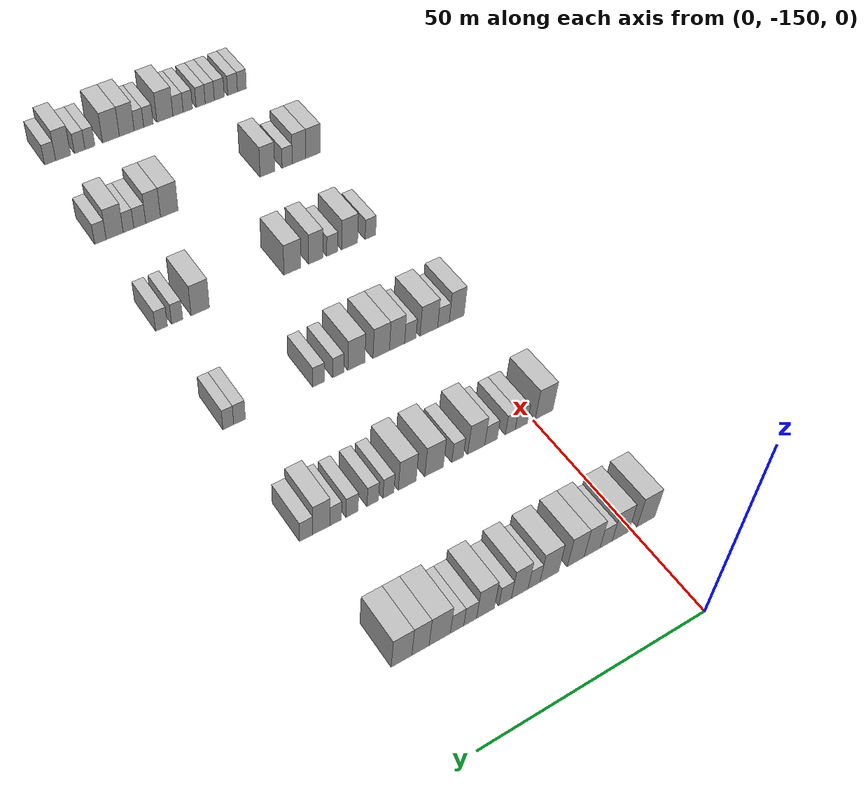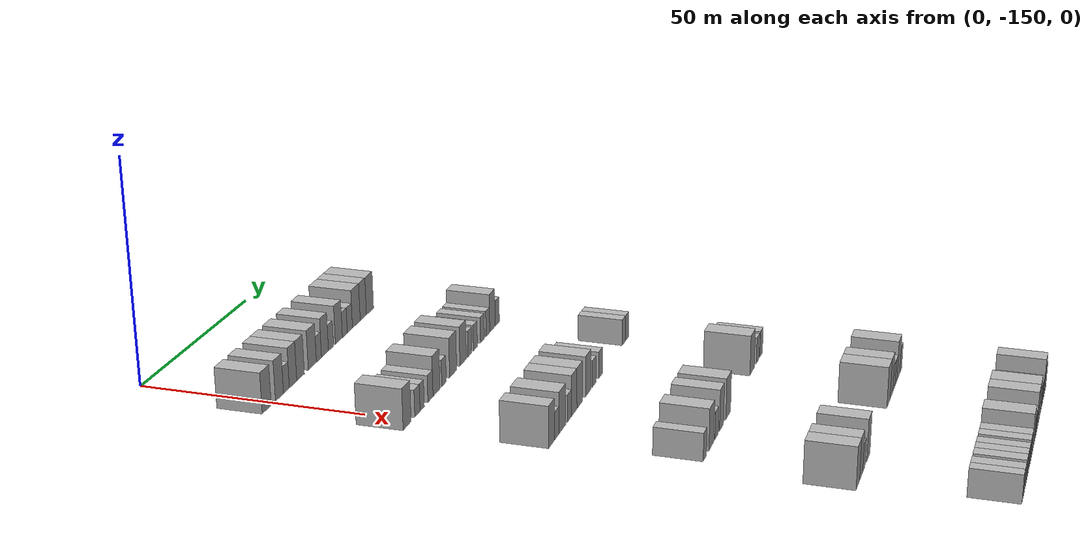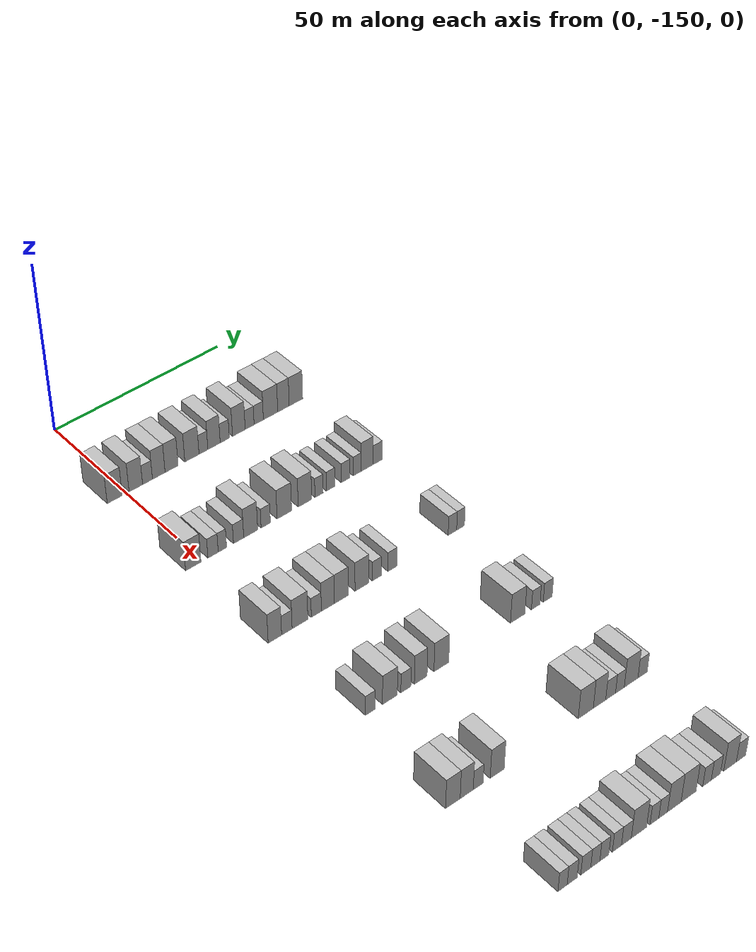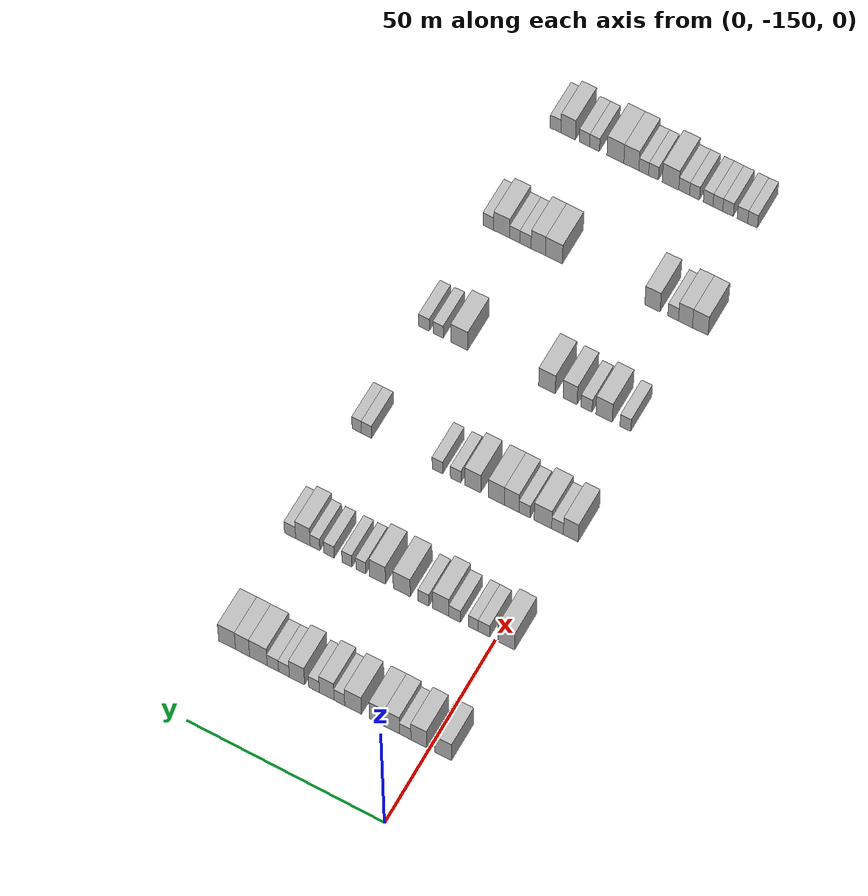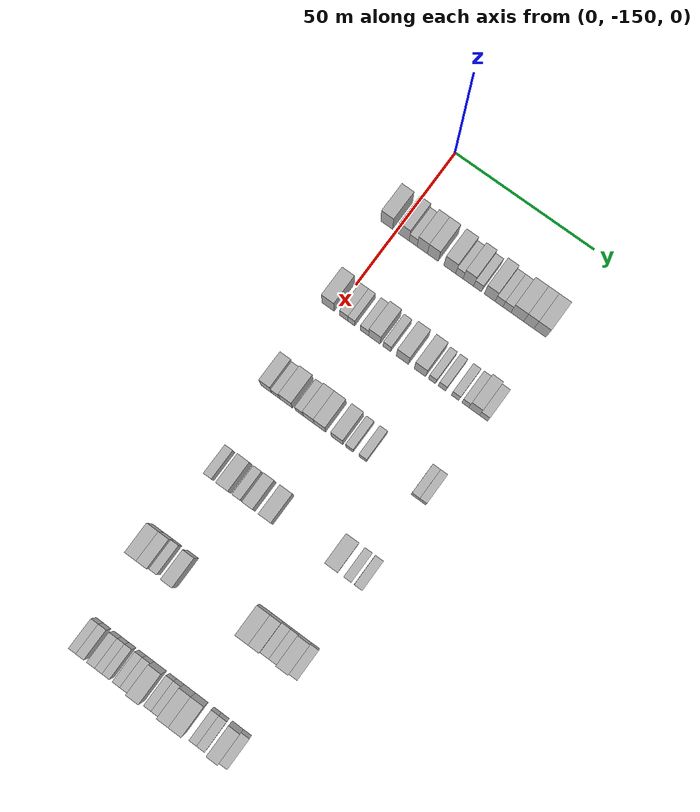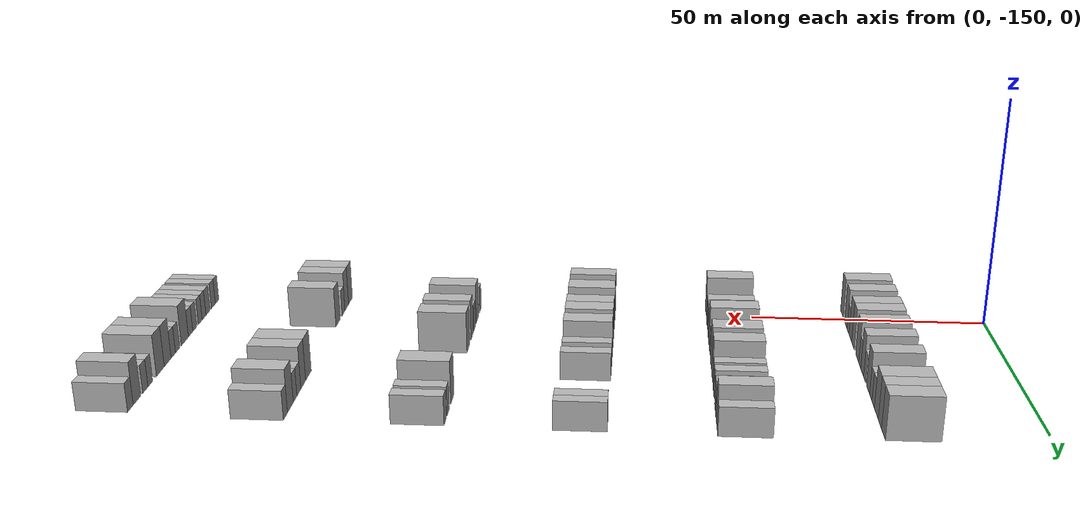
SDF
<sdf version="1.6">
 <world name="default">
  <model name="building_76">
   <static>1</static>
   <pose>25.0000 -153.3616 0 0.000000 0.000000 0.000000</pose>
   <link name="link">
    <pose>0 0 4.50 0 0 0</pose>
    <collision name="collision"><geometry><box><size>10.0000 4.3111 9.0000</size></box></geometry></collision>
    <visual name="visual">
     <cast_shadows>0</cast_shadows>
     <geometry><box><size>10.0000 4.3111 9.0000</size></box></geometry>
     <material>
      <script>
       <uri>model://HANNAS_wall/materials/scripts</uri>
       <uri>model://HANNAS_wall/materials/textures</uri>
       <name>vrc/HANNAS_wall</name>
      </script>
     </material>
    </visual>
   </link>
  </model>
  <model name="building_77">
   <static>1</static>
   <pose>25.0000 -147.2379 0 0.000000 0.000000 0.000000</pose>
   <link name="link">
    <pose>0 0 4.50 0 0 0</pose>
    <collision name="collision"><geometry><box><size>10.0000 3.9362 9.0000</size></box></geometry></collision>
    <visual name="visual">
     <cast_shadows>0</cast_shadows>
     <geometry><box><size>10.0000 3.9362 9.0000</size></box></geometry>
     <material>
      <script>
       <uri>model://HANNAS_wall/materials/scripts</uri>
       <uri>model://HANNAS_wall/materials/textures</uri>
       <name>vrc/HANNAS_wall</name>
      </script>
     </material>
    </visual>
   </link>
  </model>
  <model name="building_78">
   <static>1</static>
   <pose>25.0000 -143.8226 0 0.000000 0.000000 0.000000</pose>
   <link name="link">
    <pose>0 0 3.00 0 0 0</pose>
    <collision name="collision"><geometry><box><size>10.0000 2.8945 6.0000</size></box></geometry></collision>
    <visual name="visual">
     <cast_shadows>0</cast_shadows>
     <geometry><box><size>10.0000 2.8945 6.0000</size></box></geometry>
     <material>
      <script>
       <uri>model://HANNAS_wall/materials/scripts</uri>
       <uri>model://HANNAS_wall/materials/textures</uri>
       <name>vrc/HANNAS_wall</name>
      </script>
     </material>
    </visual>
   </link>
  </model>
  <model name="building_79">
   <static>1</static>
   <pose>25.0000 -140.5136 0 0.000000 0.000000 0.000000</pose>
   <link name="link">
    <pose>0 0 4.50 0 0 0</pose>
    <collision name="collision"><geometry><box><size>10.0000 3.7235 9.0000</size></box></geometry></collision>
    <visual name="visual">
     <cast_shadows>0</cast_shadows>
     <geometry><box><size>10.0000 3.7235 9.0000</size></box></geometry>
     <material>
      <script>
       <uri>model://HANNAS_wall/materials/scripts</uri>
       <uri>model://HANNAS_wall/materials/textures</uri>
       <name>vrc/HANNAS_wall</name>
      </script>
     </material>
    </visual>
   </link>
  </model>
  <model name="building_80">
   <static>1</static>
   <pose>25.0000 -136.7120 0 0.000000 0.000000 0.000000</pose>
   <link name="link">
    <pose>0 0 4.50 0 0 0</pose>
    <collision name="collision"><geometry><box><size>10.0000 3.8797 9.0000</size></box></geometry></collision>
    <visual name="visual">
     <cast_shadows>0</cast_shadows>
     <geometry><box><size>10.0000 3.8797 9.0000</size></box></geometry>
     <material>
      <script>
       <uri>model://HANNAS_wall/materials/scripts</uri>
       <uri>model://HANNAS_wall/materials/textures</uri>
       <name>vrc/HANNAS_wall</name>
      </script>
     </material>
    </visual>
   </link>
  </model>
  <model name="building_81">
   <static>1</static>
   <pose>25.0000 -130.6406 0 0.000000 0.000000 0.000000</pose>
   <link name="link">
    <pose>0 0 4.50 0 0 0</pose>
    <collision name="collision"><geometry><box><size>10.0000 4.2632 9.0000</size></box></geometry></collision>
    <visual name="visual">
     <cast_shadows>0</cast_shadows>
     <geometry><box><size>10.0000 4.2632 9.0000</size></box></geometry>
     <material>
      <script>
       <uri>model://HANNAS_wall/materials/scripts</uri>
       <uri>model://HANNAS_wall/materials/textures</uri>
       <name>vrc/HANNAS_wall</name>
      </script>
     </material>
    </visual>
   </link>
  </model>
  <model name="building_82">
   <static>1</static>
   <pose>25.0000 -127.1723 0 0.000000 0.000000 0.000000</pose>
   <link name="link">
    <pose>0 0 3.00 0 0 0</pose>
    <collision name="collision"><geometry><box><size>10.0000 2.6734 6.0000</size></box></geometry></collision>
    <visual name="visual">
     <cast_shadows>0</cast_shadows>
     <geometry><box><size>10.0000 2.6734 6.0000</size></box></geometry>
     <material>
      <script>
       <uri>model://HANNAS_wall/materials/scripts</uri>
       <uri>model://HANNAS_wall/materials/textures</uri>
       <name>vrc/HANNAS_wall</name>
      </script>
     </material>
    </visual>
   </link>
  </model>
  <model name="building_83">
   <static>1</static>
   <pose>25.0000 -123.9633 0 0.000000 0.000000 0.000000</pose>
   <link name="link">
    <pose>0 0 4.50 0 0 0</pose>
    <collision name="collision"><geometry><box><size>10.0000 3.7444 9.0000</size></box></geometry></collision>
    <visual name="visual">
     <cast_shadows>0</cast_shadows>
     <geometry><box><size>10.0000 3.7444 9.0000</size></box></geometry>
     <material>
      <script>
       <uri>model://HANNAS_wall/materials/scripts</uri>
       <uri>model://HANNAS_wall/materials/textures</uri>
       <name>vrc/HANNAS_wall</name>
      </script>
     </material>
    </visual>
   </link>
  </model>
  <model name="building_84">
   <static>1</static>
   <pose>25.0000 -120.7040 0 0.000000 0.000000 0.000000</pose>
   <link name="link">
    <pose>0 0 3.00 0 0 0</pose>
    <collision name="collision"><geometry><box><size>10.0000 2.7742 6.0000</size></box></geometry></collision>
    <visual name="visual">
     <cast_shadows>0</cast_shadows>
     <geometry><box><size>10.0000 2.7742 6.0000</size></box></geometry>
     <material>
      <script>
       <uri>model://HANNAS_wall/materials/scripts</uri>
       <uri>model://HANNAS_wall/materials/textures</uri>
       <name>vrc/HANNAS_wall</name>
      </script>
     </material>
    </visual>
   </link>
  </model>
  <model name="building_85">
   <static>1</static>
   <pose>25.0000 -116.3703 0 0.000000 0.000000 0.000000</pose>
   <link name="link">
    <pose>0 0 4.50 0 0 0</pose>
    <collision name="collision"><geometry><box><size>10.0000 3.8931 9.0000</size></box></geometry></collision>
    <visual name="visual">
     <cast_shadows>0</cast_shadows>
     <geometry><box><size>10.0000 3.8931 9.0000</size></box></geometry>
     <material>
      <script>
       <uri>model://HANNAS_wall/materials/scripts</uri>
       <uri>model://HANNAS_wall/materials/textures</uri>
       <name>vrc/HANNAS_wall</name>
      </script>
     </material>
    </visual>
   </link>
  </model>
  <model name="building_86">
   <static>1</static>
   <pose>25.0000 -113.0415 0 0.000000 0.000000 0.000000</pose>
   <link name="link">
    <pose>0 0 3.00 0 0 0</pose>
    <collision name="collision"><geometry><box><size>10.0000 2.7646 6.0000</size></box></geometry></collision>
    <visual name="visual">
     <cast_shadows>0</cast_shadows>
     <geometry><box><size>10.0000 2.7646 6.0000</size></box></geometry>
     <material>
      <script>
       <uri>model://HANNAS_wall/materials/scripts</uri>
       <uri>model://HANNAS_wall/materials/textures</uri>
       <name>vrc/HANNAS_wall</name>
      </script>
     </material>
    </visual>
   </link>
  </model>
  <model name="building_87">
   <static>1</static>
   <pose>25.0000 -110.2120 0 0.000000 0.000000 0.000000</pose>
   <link name="link">
    <pose>0 0 3.00 0 0 0</pose>
    <collision name="collision"><geometry><box><size>10.0000 2.8944 6.0000</size></box></geometry></collision>
    <visual name="visual">
     <cast_shadows>0</cast_shadows>
     <geometry><box><size>10.0000 2.8944 6.0000</size></box></geometry>
     <material>
      <script>
       <uri>model://HANNAS_wall/materials/scripts</uri>
       <uri>model://HANNAS_wall/materials/textures</uri>
       <name>vrc/HANNAS_wall</name>
      </script>
     </material>
    </visual>
   </link>
  </model>
  <model name="building_88">
   <static>1</static>
   <pose>25.0000 -106.5151 0 0.000000 0.000000 0.000000</pose>
   <link name="link">
    <pose>0 0 4.50 0 0 0</pose>
    <collision name="collision"><geometry><box><size>10.0000 4.4993 9.0000</size></box></geometry></collision>
    <visual name="visual">
     <cast_shadows>0</cast_shadows>
     <geometry><box><size>10.0000 4.4993 9.0000</size></box></geometry>
     <material>
      <script>
       <uri>model://HANNAS_wall/materials/scripts</uri>
       <uri>model://HANNAS_wall/materials/textures</uri>
       <name>vrc/HANNAS_wall</name>
      </script>
     </material>
    </visual>
   </link>
  </model>
  <model name="building_89">
   <static>1</static>
   <pose>25.0000 -102.4532 0 0.000000 0.000000 0.000000</pose>
   <link name="link">
    <pose>0 0 4.50 0 0 0</pose>
    <collision name="collision"><geometry><box><size>10.0000 3.6246 9.0000</size></box></geometry></collision>
    <visual name="visual">
     <cast_shadows>0</cast_shadows>
     <geometry><box><size>10.0000 3.6246 9.0000</size></box></geometry>
     <material>
      <script>
       <uri>model://HANNAS_wall/materials/scripts</uri>
       <uri>model://HANNAS_wall/materials/textures</uri>
       <name>vrc/HANNAS_wall</name>
      </script>
     </material>
    </visual>
   </link>
  </model>
  <model name="building_90">
   <static>1</static>
   <pose>25.0000 -98.4993 0 0.000000 0.000000 0.000000</pose>
   <link name="link">
    <pose>0 0 4.50 0 0 0</pose>
    <collision name="collision"><geometry><box><size>10.0000 4.2831 9.0000</size></box></geometry></collision>
    <visual name="visual">
     <cast_shadows>0</cast_shadows>
     <geometry><box><size>10.0000 4.2831 9.0000</size></box></geometry>
     <material>
      <script>
       <uri>model://HANNAS_wall/materials/scripts</uri>
       <uri>model://HANNAS_wall/materials/textures</uri>
       <name>vrc/HANNAS_wall</name>
      </script>
     </material>
    </visual>
   </link>
  </model>
  <model name="building_314">
   <static>1</static>
   <pose>55.0000 -152.6130 0 0.000000 0.000000 0.000000</pose>
   <link name="link">
    <pose>0 0 4.50 0 0 0</pose>
    <collision name="collision"><geometry><box><size>10.0000 4.3628 9.0000</size></box></geometry></collision>
    <visual name="visual">
     <cast_shadows>0</cast_shadows>
     <geometry><box><size>10.0000 4.3628 9.0000</size></box></geometry>
     <material>
      <script>
       <uri>model://HANNAS_wall/materials/scripts</uri>
       <uri>model://HANNAS_wall/materials/textures</uri>
       <name>vrc/HANNAS_wall</name>
      </script>
     </material>
    </visual>
   </link>
  </model>
  <model name="building_315">
   <static>1</static>
   <pose>55.0000 -146.9497 0 0.000000 0.000000 0.000000</pose>
   <link name="link">
    <pose>0 0 3.00 0 0 0</pose>
    <collision name="collision"><geometry><box><size>10.0000 2.9638 6.0000</size></box></geometry></collision>
    <visual name="visual">
     <cast_shadows>0</cast_shadows>
     <geometry><box><size>10.0000 2.9638 6.0000</size></box></geometry>
     <material>
      <script>
       <uri>model://HANNAS_wall/materials/scripts</uri>
       <uri>model://HANNAS_wall/materials/textures</uri>
       <name>vrc/HANNAS_wall</name>
      </script>
     </material>
    </visual>
   </link>
  </model>
  <model name="building_316">
   <static>1</static>
   <pose>55.0000 -144.2524 0 0.000000 0.000000 0.000000</pose>
   <link name="link">
    <pose>0 0 3.00 0 0 0</pose>
    <collision name="collision"><geometry><box><size>10.0000 2.4309 6.0000</size></box></geometry></collision>
    <visual name="visual">
     <cast_shadows>0</cast_shadows>
     <geometry><box><size>10.0000 2.4309 6.0000</size></box></geometry>
     <material>
      <script>
       <uri>model://HANNAS_wall/materials/scripts</uri>
       <uri>model://HANNAS_wall/materials/textures</uri>
       <name>vrc/HANNAS_wall</name>
      </script>
     </material>
    </visual>
   </link>
  </model>
  <model name="building_317">
   <static>1</static>
   <pose>55.0000 -139.5408 0 0.000000 0.000000 0.000000</pose>
   <link name="link">
    <pose>0 0 3.00 0 0 0</pose>
    <collision name="collision"><geometry><box><size>10.0000 2.9922 6.0000</size></box></geometry></collision>
    <visual name="visual">
     <cast_shadows>0</cast_shadows>
     <geometry><box><size>10.0000 2.9922 6.0000</size></box></geometry>
     <material>
      <script>
       <uri>model://HANNAS_wall/materials/scripts</uri>
       <uri>model://HANNAS_wall/materials/textures</uri>
       <name>vrc/HANNAS_wall</name>
      </script>
     </material>
    </visual>
   </link>
  </model>
  <model name="building_318">
   <static>1</static>
   <pose>55.0000 -135.9929 0 0.000000 0.000000 0.000000</pose>
   <link name="link">
    <pose>0 0 4.50 0 0 0</pose>
    <collision name="collision"><geometry><box><size>10.0000 4.1037 9.0000</size></box></geometry></collision>
    <visual name="visual">
     <cast_shadows>0</cast_shadows>
     <geometry><box><size>10.0000 4.1037 9.0000</size></box></geometry>
     <material>
      <script>
       <uri>model://HANNAS_wall/materials/scripts</uri>
       <uri>model://HANNAS_wall/materials/textures</uri>
       <name>vrc/HANNAS_wall</name>
      </script>
     </material>
    </visual>
   </link>
  </model>
  <model name="building_319">
   <static>1</static>
   <pose>55.0000 -131.5647 0 0.000000 0.000000 0.000000</pose>
   <link name="link">
    <pose>0 0 3.00 0 0 0</pose>
    <collision name="collision"><geometry><box><size>10.0000 2.7526 6.0000</size></box></geometry></collision>
    <visual name="visual">
     <cast_shadows>0</cast_shadows>
     <geometry><box><size>10.0000 2.7526 6.0000</size></box></geometry>
     <material>
      <script>
       <uri>model://HANNAS_wall/materials/scripts</uri>
       <uri>model://HANNAS_wall/materials/textures</uri>
       <name>vrc/HANNAS_wall</name>
      </script>
     </material>
    </visual>
   </link>
  </model>
  <model name="building_320">
   <static>1</static>
   <pose>55.0000 -126.0169 0 0.000000 0.000000 0.000000</pose>
   <link name="link">
    <pose>0 0 4.50 0 0 0</pose>
    <collision name="collision"><geometry><box><size>10.0000 4.3429 9.0000</size></box></geometry></collision>
    <visual name="visual">
     <cast_shadows>0</cast_shadows>
     <geometry><box><size>10.0000 4.3429 9.0000</size></box></geometry>
     <material>
      <script>
       <uri>model://HANNAS_wall/materials/scripts</uri>
       <uri>model://HANNAS_wall/materials/textures</uri>
       <name>vrc/HANNAS_wall</name>
      </script>
     </material>
    </visual>
   </link>
  </model>
  <model name="building_321">
   <static>1</static>
   <pose>55.0000 -119.8061 0 0.000000 0.000000 0.000000</pose>
   <link name="link">
    <pose>0 0 4.50 0 0 0</pose>
    <collision name="collision"><geometry><box><size>10.0000 4.0787 9.0000</size></box></geometry></collision>
    <visual name="visual">
     <cast_shadows>0</cast_shadows>
     <geometry><box><size>10.0000 4.0787 9.0000</size></box></geometry>
     <material>
      <script>
       <uri>model://HANNAS_wall/materials/scripts</uri>
       <uri>model://HANNAS_wall/materials/textures</uri>
       <name>vrc/HANNAS_wall</name>
      </script>
     </material>
    </visual>
   </link>
  </model>
  <model name="building_322">
   <static>1</static>
   <pose>55.0000 -115.5186 0 0.000000 0.000000 0.000000</pose>
   <link name="link">
    <pose>0 0 3.00 0 0 0</pose>
    <collision name="collision"><geometry><box><size>10.0000 2.4965 6.0000</size></box></geometry></collision>
    <visual name="visual">
     <cast_shadows>0</cast_shadows>
     <geometry><box><size>10.0000 2.4965 6.0000</size></box></geometry>
     <material>
      <script>
       <uri>model://HANNAS_wall/materials/scripts</uri>
       <uri>model://HANNAS_wall/materials/textures</uri>
       <name>vrc/HANNAS_wall</name>
      </script>
     </material>
    </visual>
   </link>
  </model>
  <model name="building_323">
   <static>1</static>
   <pose>55.0000 -111.9780 0 0.000000 0.000000 0.000000</pose>
   <link name="link">
    <pose>0 0 3.00 0 0 0</pose>
    <collision name="collision"><geometry><box><size>10.0000 2.5847 6.0000</size></box></geometry></collision>
    <visual name="visual">
     <cast_shadows>0</cast_shadows>
     <geometry><box><size>10.0000 2.5847 6.0000</size></box></geometry>
     <material>
      <script>
       <uri>model://HANNAS_wall/materials/scripts</uri>
       <uri>model://HANNAS_wall/materials/textures</uri>
       <name>vrc/HANNAS_wall</name>
      </script>
     </material>
    </visual>
   </link>
  </model>
  <model name="building_324">
   <static>1</static>
   <pose>55.0000 -107.3453 0 0.000000 0.000000 0.000000</pose>
   <link name="link">
    <pose>0 0 3.00 0 0 0</pose>
    <collision name="collision"><geometry><box><size>10.0000 2.6806 6.0000</size></box></geometry></collision>
    <visual name="visual">
     <cast_shadows>0</cast_shadows>
     <geometry><box><size>10.0000 2.6806 6.0000</size></box></geometry>
     <material>
      <script>
       <uri>model://HANNAS_wall/materials/scripts</uri>
       <uri>model://HANNAS_wall/materials/textures</uri>
       <name>vrc/HANNAS_wall</name>
      </script>
     </material>
    </visual>
   </link>
  </model>
  <model name="building_325">
   <static>1</static>
   <pose>55.0000 -103.7508 0 0.000000 0.000000 0.000000</pose>
   <link name="link">
    <pose>0 0 3.00 0 0 0</pose>
    <collision name="collision"><geometry><box><size>10.0000 2.5083 6.0000</size></box></geometry></collision>
    <visual name="visual">
     <cast_shadows>0</cast_shadows>
     <geometry><box><size>10.0000 2.5083 6.0000</size></box></geometry>
     <material>
      <script>
       <uri>model://HANNAS_wall/materials/scripts</uri>
       <uri>model://HANNAS_wall/materials/textures</uri>
       <name>vrc/HANNAS_wall</name>
      </script>
     </material>
    </visual>
   </link>
  </model>
  <model name="building_326">
   <static>1</static>
   <pose>55.0000 -100.6264 0 0.000000 0.000000 0.000000</pose>
   <link name="link">
    <pose>0 0 4.50 0 0 0</pose>
    <collision name="collision"><geometry><box><size>10.0000 3.7406 9.0000</size></box></geometry></collision>
    <visual name="visual">
     <cast_shadows>0</cast_shadows>
     <geometry><box><size>10.0000 3.7406 9.0000</size></box></geometry>
     <material>
      <script>
       <uri>model://HANNAS_wall/materials/scripts</uri>
       <uri>model://HANNAS_wall/materials/textures</uri>
       <name>vrc/HANNAS_wall</name>
      </script>
     </material>
    </visual>
   </link>
  </model>
  <model name="building_327">
   <static>1</static>
   <pose>55.0000 -97.3141 0 0.000000 0.000000 0.000000</pose>
   <link name="link">
    <pose>0 0 3.00 0 0 0</pose>
    <collision name="collision"><geometry><box><size>10.0000 2.8840 6.0000</size></box></geometry></collision>
    <visual name="visual">
     <cast_shadows>0</cast_shadows>
     <geometry><box><size>10.0000 2.8840 6.0000</size></box></geometry>
     <material>
      <script>
       <uri>model://HANNAS_wall/materials/scripts</uri>
       <uri>model://HANNAS_wall/materials/textures</uri>
       <name>vrc/HANNAS_wall</name>
      </script>
     </material>
    </visual>
   </link>
  </model>
  <model name="building_524">
   <static>1</static>
   <pose>85.0000 -152.5273 0 0.000000 0.000000 0.000000</pose>
   <link name="link">
    <pose>0 0 4.50 0 0 0</pose>
    <collision name="collision"><geometry><box><size>10.0000 3.7916 9.0000</size></box></geometry></collision>
    <visual name="visual">
     <cast_shadows>0</cast_shadows>
     <geometry><box><size>10.0000 3.7916 9.0000</size></box></geometry>
     <material>
      <script>
       <uri>model://HANNAS_wall/materials/scripts</uri>
       <uri>model://HANNAS_wall/materials/textures</uri>
       <name>vrc/HANNAS_wall</name>
      </script>
     </material>
    </visual>
   </link>
  </model>
  <model name="building_525">
   <static>1</static>
   <pose>85.0000 -149.1404 0 0.000000 0.000000 0.000000</pose>
   <link name="link">
    <pose>0 0 3.00 0 0 0</pose>
    <collision name="collision"><geometry><box><size>10.0000 2.9822 6.0000</size></box></geometry></collision>
    <visual name="visual">
     <cast_shadows>0</cast_shadows>
     <geometry><box><size>10.0000 2.9822 6.0000</size></box></geometry>
     <material>
      <script>
       <uri>model://HANNAS_wall/materials/scripts</uri>
       <uri>model://HANNAS_wall/materials/textures</uri>
       <name>vrc/HANNAS_wall</name>
      </script>
     </material>
    </visual>
   </link>
  </model>
  <model name="building_526">
   <static>1</static>
   <pose>85.0000 -145.4048 0 0.000000 0.000000 0.000000</pose>
   <link name="link">
    <pose>0 0 4.50 0 0 0</pose>
    <collision name="collision"><geometry><box><size>10.0000 4.4889 9.0000</size></box></geometry></collision>
    <visual name="visual">
     <cast_shadows>0</cast_shadows>
     <geometry><box><size>10.0000 4.4889 9.0000</size></box></geometry>
     <material>
      <script>
       <uri>model://HANNAS_wall/materials/scripts</uri>
       <uri>model://HANNAS_wall/materials/textures</uri>
       <name>vrc/HANNAS_wall</name>
      </script>
     </material>
    </visual>
   </link>
  </model>
  <model name="building_527">
   <static>1</static>
   <pose>85.0000 -140.7170 0 0.000000 0.000000 0.000000</pose>
   <link name="link">
    <pose>0 0 3.00 0 0 0</pose>
    <collision name="collision"><geometry><box><size>10.0000 2.8865 6.0000</size></box></geometry></collision>
    <visual name="visual">
     <cast_shadows>0</cast_shadows>
     <geometry><box><size>10.0000 2.8865 6.0000</size></box></geometry>
     <material>
      <script>
       <uri>model://HANNAS_wall/materials/scripts</uri>
       <uri>model://HANNAS_wall/materials/textures</uri>
       <name>vrc/HANNAS_wall</name>
      </script>
     </material>
    </visual>
   </link>
  </model>
  <model name="building_528">
   <static>1</static>
   <pose>85.0000 -137.3916 0 0.000000 0.000000 0.000000</pose>
   <link name="link">
    <pose>0 0 4.50 0 0 0</pose>
    <collision name="collision"><geometry><box><size>10.0000 3.7644 9.0000</size></box></geometry></collision>
    <visual name="visual">
     <cast_shadows>0</cast_shadows>
     <geometry><box><size>10.0000 3.7644 9.0000</size></box></geometry>
     <material>
      <script>
       <uri>model://HANNAS_wall/materials/scripts</uri>
       <uri>model://HANNAS_wall/materials/textures</uri>
       <name>vrc/HANNAS_wall</name>
      </script>
     </material>
    </visual>
   </link>
  </model>
  <model name="building_529">
   <static>1</static>
   <pose>85.0000 -133.4790 0 0.000000 0.000000 0.000000</pose>
   <link name="link">
    <pose>0 0 4.50 0 0 0</pose>
    <collision name="collision"><geometry><box><size>10.0000 4.0608 9.0000</size></box></geometry></collision>
    <visual name="visual">
     <cast_shadows>0</cast_shadows>
     <geometry><box><size>10.0000 4.0608 9.0000</size></box></geometry>
     <material>
      <script>
       <uri>model://HANNAS_wall/materials/scripts</uri>
       <uri>model://HANNAS_wall/materials/textures</uri>
       <name>vrc/HANNAS_wall</name>
      </script>
     </material>
    </visual>
   </link>
  </model>
  <model name="building_530">
   <static>1</static>
   <pose>85.0000 -127.3937 0 0.000000 0.000000 0.000000</pose>
   <link name="link">
    <pose>0 0 4.50 0 0 0</pose>
    <collision name="collision"><geometry><box><size>10.0000 4.1096 9.0000</size></box></geometry></collision>
    <visual name="visual">
     <cast_shadows>0</cast_shadows>
     <geometry><box><size>10.0000 4.1096 9.0000</size></box></geometry>
     <material>
      <script>
       <uri>model://HANNAS_wall/materials/scripts</uri>
       <uri>model://HANNAS_wall/materials/textures</uri>
       <name>vrc/HANNAS_wall</name>
      </script>
     </material>
    </visual>
   </link>
  </model>
  <model name="building_531">
   <static>1</static>
   <pose>85.0000 -123.0066 0 0.000000 0.000000 0.000000</pose>
   <link name="link">
    <pose>0 0 3.00 0 0 0</pose>
    <collision name="collision"><geometry><box><size>10.0000 2.6648 6.0000</size></box></geometry></collision>
    <visual name="visual">
     <cast_shadows>0</cast_shadows>
     <geometry><box><size>10.0000 2.6648 6.0000</size></box></geometry>
     <material>
      <script>
       <uri>model://HANNAS_wall/materials/scripts</uri>
       <uri>model://HANNAS_wall/materials/textures</uri>
       <name>vrc/HANNAS_wall</name>
      </script>
     </material>
    </visual>
   </link>
  </model>
  <model name="building_532">
   <static>1</static>
   <pose>85.0000 -118.3145 0 0.000000 0.000000 0.000000</pose>
   <link name="link">
    <pose>0 0 3.00 0 0 0</pose>
    <collision name="collision"><geometry><box><size>10.0000 2.7194 6.0000</size></box></geometry></collision>
    <visual name="visual">
     <cast_shadows>0</cast_shadows>
     <geometry><box><size>10.0000 2.7194 6.0000</size></box></geometry>
     <material>
      <script>
       <uri>model://HANNAS_wall/materials/scripts</uri>
       <uri>model://HANNAS_wall/materials/textures</uri>
       <name>vrc/HANNAS_wall</name>
      </script>
     </material>
    </visual>
   </link>
  </model>
  <model name="building_533">
   <static>1</static>
   <pose>85.0000 -99.9695 0 0.000000 0.000000 0.000000</pose>
   <link name="link">
    <pose>0 0 3.00 0 0 0</pose>
    <collision name="collision"><geometry><box><size>10.0000 2.6569 6.0000</size></box></geometry></collision>
    <visual name="visual">
     <cast_shadows>0</cast_shadows>
     <geometry><box><size>10.0000 2.6569 6.0000</size></box></geometry>
     <material>
      <script>
       <uri>model://HANNAS_wall/materials/scripts</uri>
       <uri>model://HANNAS_wall/materials/textures</uri>
       <name>vrc/HANNAS_wall</name>
      </script>
     </material>
    </visual>
   </link>
  </model>
  <model name="building_534">
   <static>1</static>
   <pose>85.0000 -97.4254 0 0.000000 0.000000 0.000000</pose>
   <link name="link">
    <pose>0 0 3.00 0 0 0</pose>
    <collision name="collision"><geometry><box><size>10.0000 2.4312 6.0000</size></box></geometry></collision>
    <visual name="visual">
     <cast_shadows>0</cast_shadows>
     <geometry><box><size>10.0000 2.4312 6.0000</size></box></geometry>
     <material>
      <script>
       <uri>model://HANNAS_wall/materials/scripts</uri>
       <uri>model://HANNAS_wall/materials/textures</uri>
       <name>vrc/HANNAS_wall</name>
      </script>
     </material>
    </visual>
   </link>
  </model>
  <model name="building_750">
   <static>1</static>
   <pose>115.0000 -150.1967 0 0.000000 0.000000 0.000000</pose>
   <link name="link">
    <pose>0 0 3.00 0 0 0</pose>
    <collision name="collision"><geometry><box><size>10.0000 2.7707 6.0000</size></box></geometry></collision>
    <visual name="visual">
     <cast_shadows>0</cast_shadows>
     <geometry><box><size>10.0000 2.7707 6.0000</size></box></geometry>
     <material>
      <script>
       <uri>model://HANNAS_wall/materials/scripts</uri>
       <uri>model://HANNAS_wall/materials/textures</uri>
       <name>vrc/HANNAS_wall</name>
      </script>
     </material>
    </visual>
   </link>
  </model>
  <model name="building_751">
   <static>1</static>
   <pose>115.0000 -144.7135 0 0.000000 0.000000 0.000000</pose>
   <link name="link">
    <pose>0 0 4.50 0 0 0</pose>
    <collision name="collision"><geometry><box><size>10.0000 4.1957 9.0000</size></box></geometry></collision>
    <visual name="visual">
     <cast_shadows>0</cast_shadows>
     <geometry><box><size>10.0000 4.1957 9.0000</size></box></geometry>
     <material>
      <script>
       <uri>model://HANNAS_wall/materials/scripts</uri>
       <uri>model://HANNAS_wall/materials/textures</uri>
       <name>vrc/HANNAS_wall</name>
      </script>
     </material>
    </visual>
   </link>
  </model>
  <model name="building_752">
   <static>1</static>
   <pose>115.0000 -140.1884 0 0.000000 0.000000 0.000000</pose>
   <link name="link">
    <pose>0 0 3.00 0 0 0</pose>
    <collision name="collision"><geometry><box><size>10.0000 2.8544 6.0000</size></box></geometry></collision>
    <visual name="visual">
     <cast_shadows>0</cast_shadows>
     <geometry><box><size>10.0000 2.8544 6.0000</size></box></geometry>
     <material>
      <script>
       <uri>model://HANNAS_wall/materials/scripts</uri>
       <uri>model://HANNAS_wall/materials/textures</uri>
       <name>vrc/HANNAS_wall</name>
      </script>
     </material>
    </visual>
   </link>
  </model>
  <model name="building_753">
   <static>1</static>
   <pose>115.0000 -135.9329 0 0.000000 0.000000 0.000000</pose>
   <link name="link">
    <pose>0 0 4.50 0 0 0</pose>
    <collision name="collision"><geometry><box><size>10.0000 3.6566 9.0000</size></box></geometry></collision>
    <visual name="visual">
     <cast_shadows>0</cast_shadows>
     <geometry><box><size>10.0000 3.6566 9.0000</size></box></geometry>
     <material>
      <script>
       <uri>model://HANNAS_wall/materials/scripts</uri>
       <uri>model://HANNAS_wall/materials/textures</uri>
       <name>vrc/HANNAS_wall</name>
      </script>
     </material>
    </visual>
   </link>
  </model>
  <model name="building_754">
   <static>1</static>
   <pose>115.0000 -129.9545 0 0.000000 0.000000 0.000000</pose>
   <link name="link">
    <pose>0 0 4.50 0 0 0</pose>
    <collision name="collision"><geometry><box><size>10.0000 4.3000 9.0000</size></box></geometry></collision>
    <visual name="visual">
     <cast_shadows>0</cast_shadows>
     <geometry><box><size>10.0000 4.3000 9.0000</size></box></geometry>
     <material>
      <script>
       <uri>model://HANNAS_wall/materials/scripts</uri>
       <uri>model://HANNAS_wall/materials/textures</uri>
       <name>vrc/HANNAS_wall</name>
      </script>
     </material>
    </visual>
   </link>
  </model>
  <model name="building_755">
   <static>1</static>
   <pose>115.0000 -107.2024 0 0.000000 0.000000 0.000000</pose>
   <link name="link">
    <pose>0 0 4.50 0 0 0</pose>
    <collision name="collision"><geometry><box><size>10.0000 4.4014 9.0000</size></box></geometry></collision>
    <visual name="visual">
     <cast_shadows>0</cast_shadows>
     <geometry><box><size>10.0000 4.4014 9.0000</size></box></geometry>
     <material>
      <script>
       <uri>model://HANNAS_wall/materials/scripts</uri>
       <uri>model://HANNAS_wall/materials/textures</uri>
       <name>vrc/HANNAS_wall</name>
      </script>
     </material>
    </visual>
   </link>
  </model>
  <model name="building_756">
   <static>1</static>
   <pose>115.0000 -101.6849 0 0.000000 0.000000 0.000000</pose>
   <link name="link">
    <pose>0 0 3.00 0 0 0</pose>
    <collision name="collision"><geometry><box><size>10.0000 2.6336 6.0000</size></box></geometry></collision>
    <visual name="visual">
     <cast_shadows>0</cast_shadows>
     <geometry><box><size>10.0000 2.6336 6.0000</size></box></geometry>
     <material>
      <script>
       <uri>model://HANNAS_wall/materials/scripts</uri>
       <uri>model://HANNAS_wall/materials/textures</uri>
       <name>vrc/HANNAS_wall</name>
      </script>
     </material>
    </visual>
   </link>
  </model>
  <model name="building_757">
   <static>1</static>
   <pose>115.0000 -97.9896 0 0.000000 0.000000 0.000000</pose>
   <link name="link">
    <pose>0 0 3.00 0 0 0</pose>
    <collision name="collision"><geometry><box><size>10.0000 2.7569 6.0000</size></box></geometry></collision>
    <visual name="visual">
     <cast_shadows>0</cast_shadows>
     <geometry><box><size>10.0000 2.7569 6.0000</size></box></geometry>
     <material>
      <script>
       <uri>model://HANNAS_wall/materials/scripts</uri>
       <uri>model://HANNAS_wall/materials/textures</uri>
       <name>vrc/HANNAS_wall</name>
      </script>
     </material>
    </visual>
   </link>
  </model>
  <model name="building_977">
   <static>1</static>
   <pose>145.0000 -153.3454 0 0.000000 0.000000 0.000000</pose>
   <link name="link">
    <pose>0 0 4.50 0 0 0</pose>
    <collision name="collision"><geometry><box><size>10.0000 4.0223 9.0000</size></box></geometry></collision>
    <visual name="visual">
     <cast_shadows>0</cast_shadows>
     <geometry><box><size>10.0000 4.0223 9.0000</size></box></geometry>
     <material>
      <script>
       <uri>model://HANNAS_wall/materials/scripts</uri>
       <uri>model://HANNAS_wall/materials/textures</uri>
       <name>vrc/HANNAS_wall</name>
      </script>
     </material>
    </visual>
   </link>
  </model>
  <model name="building_978">
   <static>1</static>
   <pose>145.0000 -149.5202 0 0.000000 0.000000 0.000000</pose>
   <link name="link">
    <pose>0 0 4.50 0 0 0</pose>
    <collision name="collision"><geometry><box><size>10.0000 3.6281 9.0000</size></box></geometry></collision>
    <visual name="visual">
     <cast_shadows>0</cast_shadows>
     <geometry><box><size>10.0000 3.6281 9.0000</size></box></geometry>
     <material>
      <script>
       <uri>model://HANNAS_wall/materials/scripts</uri>
       <uri>model://HANNAS_wall/materials/textures</uri>
       <name>vrc/HANNAS_wall</name>
      </script>
     </material>
    </visual>
   </link>
  </model>
  <model name="building_979">
   <static>1</static>
   <pose>145.0000 -146.3374 0 0.000000 0.000000 0.000000</pose>
   <link name="link">
    <pose>0 0 3.00 0 0 0</pose>
    <collision name="collision"><geometry><box><size>10.0000 2.7374 6.0000</size></box></geometry></collision>
    <visual name="visual">
     <cast_shadows>0</cast_shadows>
     <geometry><box><size>10.0000 2.7374 6.0000</size></box></geometry>
     <material>
      <script>
       <uri>model://HANNAS_wall/materials/scripts</uri>
       <uri>model://HANNAS_wall/materials/textures</uri>
       <name>vrc/HANNAS_wall</name>
      </script>
     </material>
    </visual>
   </link>
  </model>
  <model name="building_980">
   <static>1</static>
   <pose>145.0000 -140.9901 0 0.000000 0.000000 0.000000</pose>
   <link name="link">
    <pose>0 0 4.50 0 0 0</pose>
    <collision name="collision"><geometry><box><size>10.0000 3.9572 9.0000</size></box></geometry></collision>
    <visual name="visual">
     <cast_shadows>0</cast_shadows>
     <geometry><box><size>10.0000 3.9572 9.0000</size></box></geometry>
     <material>
      <script>
       <uri>model://HANNAS_wall/materials/scripts</uri>
       <uri>model://HANNAS_wall/materials/textures</uri>
       <name>vrc/HANNAS_wall</name>
      </script>
     </material>
    </visual>
   </link>
  </model>
  <model name="building_981">
   <static>1</static>
   <pose>145.0000 -115.2982 0 0.000000 0.000000 0.000000</pose>
   <link name="link">
    <pose>0 0 4.50 0 0 0</pose>
    <collision name="collision"><geometry><box><size>10.0000 4.4755 9.0000</size></box></geometry></collision>
    <visual name="visual">
     <cast_shadows>0</cast_shadows>
     <geometry><box><size>10.0000 4.4755 9.0000</size></box></geometry>
     <material>
      <script>
       <uri>model://HANNAS_wall/materials/scripts</uri>
       <uri>model://HANNAS_wall/materials/textures</uri>
       <name>vrc/HANNAS_wall</name>
      </script>
     </material>
    </visual>
   </link>
  </model>
  <model name="building_982">
   <static>1</static>
   <pose>145.0000 -111.2003 0 0.000000 0.000000 0.000000</pose>
   <link name="link">
    <pose>0 0 4.50 0 0 0</pose>
    <collision name="collision"><geometry><box><size>10.0000 3.7203 9.0000</size></box></geometry></collision>
    <visual name="visual">
     <cast_shadows>0</cast_shadows>
     <geometry><box><size>10.0000 3.7203 9.0000</size></box></geometry>
     <material>
      <script>
       <uri>model://HANNAS_wall/materials/scripts</uri>
       <uri>model://HANNAS_wall/materials/textures</uri>
       <name>vrc/HANNAS_wall</name>
      </script>
     </material>
    </visual>
   </link>
  </model>
  <model name="building_983">
   <static>1</static>
   <pose>145.0000 -107.8491 0 0.000000 0.000000 0.000000</pose>
   <link name="link">
    <pose>0 0 3.00 0 0 0</pose>
    <collision name="collision"><geometry><box><size>10.0000 2.9822 6.0000</size></box></geometry></collision>
    <visual name="visual">
     <cast_shadows>0</cast_shadows>
     <geometry><box><size>10.0000 2.9822 6.0000</size></box></geometry>
     <material>
      <script>
       <uri>model://HANNAS_wall/materials/scripts</uri>
       <uri>model://HANNAS_wall/materials/textures</uri>
       <name>vrc/HANNAS_wall</name>
      </script>
     </material>
    </visual>
   </link>
  </model>
  <model name="building_984">
   <static>1</static>
   <pose>145.0000 -105.0357 0 0.000000 0.000000 0.000000</pose>
   <link name="link">
    <pose>0 0 3.00 0 0 0</pose>
    <collision name="collision"><geometry><box><size>10.0000 2.6447 6.0000</size></box></geometry></collision>
    <visual name="visual">
     <cast_shadows>0</cast_shadows>
     <geometry><box><size>10.0000 2.6447 6.0000</size></box></geometry>
     <material>
      <script>
       <uri>model://HANNAS_wall/materials/scripts</uri>
       <uri>model://HANNAS_wall/materials/textures</uri>
       <name>vrc/HANNAS_wall</name>
      </script>
     </material>
    </visual>
   </link>
  </model>
  <model name="building_985">
   <static>1</static>
   <pose>145.0000 -101.6141 0 0.000000 0.000000 0.000000</pose>
   <link name="link">
    <pose>0 0 4.50 0 0 0</pose>
    <collision name="collision"><geometry><box><size>10.0000 4.1985 9.0000</size></box></geometry></collision>
    <visual name="visual">
     <cast_shadows>0</cast_shadows>
     <geometry><box><size>10.0000 4.1985 9.0000</size></box></geometry>
     <material>
      <script>
       <uri>model://HANNAS_wall/materials/scripts</uri>
       <uri>model://HANNAS_wall/materials/textures</uri>
       <name>vrc/HANNAS_wall</name>
      </script>
     </material>
    </visual>
   </link>
  </model>
  <model name="building_986">
   <static>1</static>
   <pose>145.0000 -98.0906 0 0.000000 0.000000 0.000000</pose>
   <link name="link">
    <pose>0 0 3.00 0 0 0</pose>
    <collision name="collision"><geometry><box><size>10.0000 2.8483 6.0000</size></box></geometry></collision>
    <visual name="visual">
     <cast_shadows>0</cast_shadows>
     <geometry><box><size>10.0000 2.8483 6.0000</size></box></geometry>
     <material>
      <script>
       <uri>model://HANNAS_wall/materials/scripts</uri>
       <uri>model://HANNAS_wall/materials/textures</uri>
       <name>vrc/HANNAS_wall</name>
      </script>
     </material>
    </visual>
   </link>
  </model>
  <model name="building_1178">
   <static>1</static>
   <pose>175.0000 -150.9896 0 0.000000 0.000000 0.000000</pose>
   <link name="link">
    <pose>0 0 3.00 0 0 0</pose>
    <collision name="collision"><geometry><box><size>10.0000 2.5418 6.0000</size></box></geometry></collision>
    <visual name="visual">
     <cast_shadows>0</cast_shadows>
     <geometry><box><size>10.0000 2.5418 6.0000</size></box></geometry>
     <material>
      <script>
       <uri>model://HANNAS_wall/materials/scripts</uri>
       <uri>model://HANNAS_wall/materials/textures</uri>
       <name>vrc/HANNAS_wall</name>
      </script>
     </material>
    </visual>
   </link>
  </model>
  <model name="building_1179">
   <static>1</static>
   <pose>175.0000 -148.3499 0 0.000000 0.000000 0.000000</pose>
   <link name="link">
    <pose>0 0 3.00 0 0 0</pose>
    <collision name="collision"><geometry><box><size>10.0000 2.7377 6.0000</size></box></geometry></collision>
    <visual name="visual">
     <cast_shadows>0</cast_shadows>
     <geometry><box><size>10.0000 2.7377 6.0000</size></box></geometry>
     <material>
      <script>
       <uri>model://HANNAS_wall/materials/scripts</uri>
       <uri>model://HANNAS_wall/materials/textures</uri>
       <name>vrc/HANNAS_wall</name>
      </script>
     </material>
    </visual>
   </link>
  </model>
  <model name="building_1180">
   <static>1</static>
   <pose>175.0000 -144.5921 0 0.000000 0.000000 0.000000</pose>
   <link name="link">
    <pose>0 0 3.00 0 0 0</pose>
    <collision name="collision"><geometry><box><size>10.0000 2.7779 6.0000</size></box></geometry></collision>
    <visual name="visual">
     <cast_shadows>0</cast_shadows>
     <geometry><box><size>10.0000 2.7779 6.0000</size></box></geometry>
     <material>
      <script>
       <uri>model://HANNAS_wall/materials/scripts</uri>
       <uri>model://HANNAS_wall/materials/textures</uri>
       <name>vrc/HANNAS_wall</name>
      </script>
     </material>
    </visual>
   </link>
  </model>
  <model name="building_1181">
   <static>1</static>
   <pose>175.0000 -141.9300 0 0.000000 0.000000 0.000000</pose>
   <link name="link">
    <pose>0 0 3.00 0 0 0</pose>
    <collision name="collision"><geometry><box><size>10.0000 2.5463 6.0000</size></box></geometry></collision>
    <visual name="visual">
     <cast_shadows>0</cast_shadows>
     <geometry><box><size>10.0000 2.5463 6.0000</size></box></geometry>
     <material>
      <script>
       <uri>model://HANNAS_wall/materials/scripts</uri>
       <uri>model://HANNAS_wall/materials/textures</uri>
       <name>vrc/HANNAS_wall</name>
      </script>
     </material>
    </visual>
   </link>
  </model>
  <model name="building_1182">
   <static>1</static>
   <pose>175.0000 -139.3953 0 0.000000 0.000000 0.000000</pose>
   <link name="link">
    <pose>0 0 3.00 0 0 0</pose>
    <collision name="collision"><geometry><box><size>10.0000 2.5232 6.0000</size></box></geometry></collision>
    <visual name="visual">
     <cast_shadows>0</cast_shadows>
     <geometry><box><size>10.0000 2.5232 6.0000</size></box></geometry>
     <material>
      <script>
       <uri>model://HANNAS_wall/materials/scripts</uri>
       <uri>model://HANNAS_wall/materials/textures</uri>
       <name>vrc/HANNAS_wall</name>
      </script>
     </material>
    </visual>
   </link>
  </model>
  <model name="building_1183">
   <static>1</static>
   <pose>175.0000 -135.8419 0 0.000000 0.000000 0.000000</pose>
   <link name="link">
    <pose>0 0 3.00 0 0 0</pose>
    <collision name="collision"><geometry><box><size>10.0000 2.5834 6.0000</size></box></geometry></collision>
    <visual name="visual">
     <cast_shadows>0</cast_shadows>
     <geometry><box><size>10.0000 2.5834 6.0000</size></box></geometry>
     <material>
      <script>
       <uri>model://HANNAS_wall/materials/scripts</uri>
       <uri>model://HANNAS_wall/materials/textures</uri>
       <name>vrc/HANNAS_wall</name>
      </script>
     </material>
    </visual>
   </link>
  </model>
  <model name="building_1184">
   <static>1</static>
   <pose>175.0000 -133.1459 0 0.000000 0.000000 0.000000</pose>
   <link name="link">
    <pose>0 0 3.00 0 0 0</pose>
    <collision name="collision"><geometry><box><size>10.0000 2.8086 6.0000</size></box></geometry></collision>
    <visual name="visual">
     <cast_shadows>0</cast_shadows>
     <geometry><box><size>10.0000 2.8086 6.0000</size></box></geometry>
     <material>
      <script>
       <uri>model://HANNAS_wall/materials/scripts</uri>
       <uri>model://HANNAS_wall/materials/textures</uri>
       <name>vrc/HANNAS_wall</name>
      </script>
     </material>
    </visual>
   </link>
  </model>
  <model name="building_1185">
   <static>1</static>
   <pose>175.0000 -129.5612 0 0.000000 0.000000 0.000000</pose>
   <link name="link">
    <pose>0 0 4.50 0 0 0</pose>
    <collision name="collision"><geometry><box><size>10.0000 4.3609 9.0000</size></box></geometry></collision>
    <visual name="visual">
     <cast_shadows>0</cast_shadows>
     <geometry><box><size>10.0000 4.3609 9.0000</size></box></geometry>
     <material>
      <script>
       <uri>model://HANNAS_wall/materials/scripts</uri>
       <uri>model://HANNAS_wall/materials/textures</uri>
       <name>vrc/HANNAS_wall</name>
      </script>
     </material>
    </visual>
   </link>
  </model>
  <model name="building_1186">
   <static>1</static>
   <pose>175.0000 -125.0996 0 0.000000 0.000000 0.000000</pose>
   <link name="link">
    <pose>0 0 3.00 0 0 0</pose>
    <collision name="collision"><geometry><box><size>10.0000 2.5623 6.0000</size></box></geometry></collision>
    <visual name="visual">
     <cast_shadows>0</cast_shadows>
     <geometry><box><size>10.0000 2.5623 6.0000</size></box></geometry>
     <material>
      <script>
       <uri>model://HANNAS_wall/materials/scripts</uri>
       <uri>model://HANNAS_wall/materials/textures</uri>
       <name>vrc/HANNAS_wall</name>
      </script>
     </material>
    </visual>
   </link>
  </model>
  <model name="building_1187">
   <static>1</static>
   <pose>175.0000 -122.5439 0 0.000000 0.000000 0.000000</pose>
   <link name="link">
    <pose>0 0 3.00 0 0 0</pose>
    <collision name="collision"><geometry><box><size>10.0000 2.5489 6.0000</size></box></geometry></collision>
    <visual name="visual">
     <cast_shadows>0</cast_shadows>
     <geometry><box><size>10.0000 2.5489 6.0000</size></box></geometry>
     <material>
      <script>
       <uri>model://HANNAS_wall/materials/scripts</uri>
       <uri>model://HANNAS_wall/materials/textures</uri>
       <name>vrc/HANNAS_wall</name>
      </script>
     </material>
    </visual>
   </link>
  </model>
  <model name="building_1188">
   <static>1</static>
   <pose>175.0000 -119.2852 0 0.000000 0.000000 0.000000</pose>
   <link name="link">
    <pose>0 0 4.50 0 0 0</pose>
    <collision name="collision"><geometry><box><size>10.0000 3.9687 9.0000</size></box></geometry></collision>
    <visual name="visual">
     <cast_shadows>0</cast_shadows>
     <geometry><box><size>10.0000 3.9687 9.0000</size></box></geometry>
     <material>
      <script>
       <uri>model://HANNAS_wall/materials/scripts</uri>
       <uri>model://HANNAS_wall/materials/textures</uri>
       <name>vrc/HANNAS_wall</name>
      </script>
     </material>
    </visual>
   </link>
  </model>
  <model name="building_1189">
   <static>1</static>
   <pose>175.0000 -115.0857 0 0.000000 0.000000 0.000000</pose>
   <link name="link">
    <pose>0 0 4.50 0 0 0</pose>
    <collision name="collision"><geometry><box><size>10.0000 4.4302 9.0000</size></box></geometry></collision>
    <visual name="visual">
     <cast_shadows>0</cast_shadows>
     <geometry><box><size>10.0000 4.4302 9.0000</size></box></geometry>
     <material>
      <script>
       <uri>model://HANNAS_wall/materials/scripts</uri>
       <uri>model://HANNAS_wall/materials/textures</uri>
       <name>vrc/HANNAS_wall</name>
      </script>
     </material>
    </visual>
   </link>
  </model>
  <model name="building_1190">
   <static>1</static>
   <pose>175.0000 -109.5808 0 0.000000 0.000000 0.000000</pose>
   <link name="link">
    <pose>0 0 3.00 0 0 0</pose>
    <collision name="collision"><geometry><box><size>10.0000 2.5797 6.0000</size></box></geometry></collision>
    <visual name="visual">
     <cast_shadows>0</cast_shadows>
     <geometry><box><size>10.0000 2.5797 6.0000</size></box></geometry>
     <material>
      <script>
       <uri>model://HANNAS_wall/materials/scripts</uri>
       <uri>model://HANNAS_wall/materials/textures</uri>
       <name>vrc/HANNAS_wall</name>
      </script>
     </material>
    </visual>
   </link>
  </model>
  <model name="building_1191">
   <static>1</static>
   <pose>175.0000 -106.9166 0 0.000000 0.000000 0.000000</pose>
   <link name="link">
    <pose>0 0 3.00 0 0 0</pose>
    <collision name="collision"><geometry><box><size>10.0000 2.7487 6.0000</size></box></geometry></collision>
    <visual name="visual">
     <cast_shadows>0</cast_shadows>
     <geometry><box><size>10.0000 2.7487 6.0000</size></box></geometry>
     <material>
      <script>
       <uri>model://HANNAS_wall/materials/scripts</uri>
       <uri>model://HANNAS_wall/materials/textures</uri>
       <name>vrc/HANNAS_wall</name>
      </script>
     </material>
    </visual>
   </link>
  </model>
  <model name="building_1192">
   <static>1</static>
   <pose>175.0000 -102.6171 0 0.000000 0.000000 0.000000</pose>
   <link name="link">
    <pose>0 0 4.50 0 0 0</pose>
    <collision name="collision"><geometry><box><size>10.0000 3.8504 9.0000</size></box></geometry></collision>
    <visual name="visual">
     <cast_shadows>0</cast_shadows>
     <geometry><box><size>10.0000 3.8504 9.0000</size></box></geometry>
     <material>
      <script>
       <uri>model://HANNAS_wall/materials/scripts</uri>
       <uri>model://HANNAS_wall/materials/textures</uri>
       <name>vrc/HANNAS_wall</name>
      </script>
     </material>
    </visual>
   </link>
  </model>
  <model name="building_1193">
   <static>1</static>
   <pose>175.0000 -99.2740 0 0.000000 0.000000 0.000000</pose>
   <link name="link">
    <pose>0 0 3.00 0 0 0</pose>
    <collision name="collision"><geometry><box><size>10.0000 2.8359 6.0000</size></box></geometry></collision>
    <visual name="visual">
     <cast_shadows>0</cast_shadows>
     <geometry><box><size>10.0000 2.8359 6.0000</size></box></geometry>
     <material>
      <script>
       <uri>model://HANNAS_wall/materials/scripts</uri>
       <uri>model://HANNAS_wall/materials/textures</uri>
       <name>vrc/HANNAS_wall</name>
      </script>
     </material>
    </visual>
   </link>
  </model>
 </world>
</sdf>
